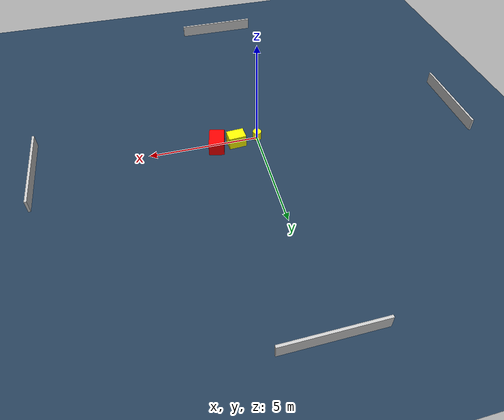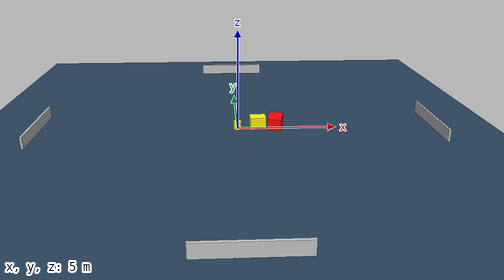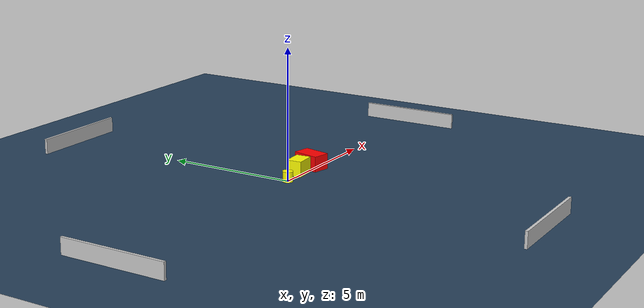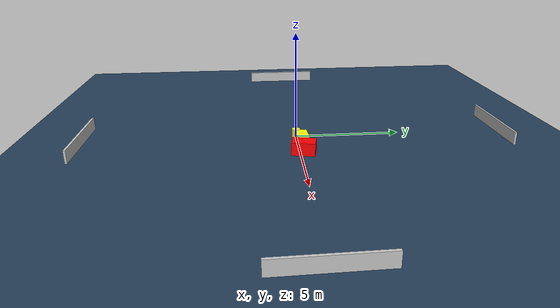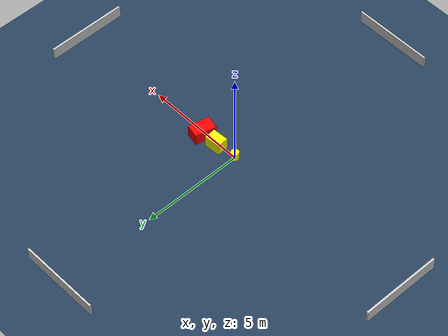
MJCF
<?xml version="1.0" ?>
<mujoco model="generated_environment">
  <option timestep="0.01" integrator="RK4" cone="elliptic"/>
  <default>
    <geom density="1"/>
  </default>
  <asset>
    <texture builtin="gradient" height="3072" name="skybox" rgb1="0.3 0.5 0.7" rgb2="0 0 0" type="skybox" width="512"/>
    <texture builtin="checker" height="300" name="groundplane" rgb1="0.2 0.3 0.4" rgb2="0.1 0.2 0.3" type="2d" width="300"/>
    <material name="groundplane" reflectance="0.2" texrepeat="5 5" texture="groundplane"/>
  </asset>
  <worldbody>
    <light dir="0 0 -1" directional="true" pos="0 0 1.5"/>
    <geom condim="3" friction="0.5 0.005 0.001" material="groundplane" name="floor" pos="0 0 0" size="0 0 0.05" type="plane"/>
    <body name="walls">
      <geom name="wall_1" condim="4" pos="-10.0 0.0 0.3" rgba="0.800000011920929 0.800000011920929 0.800000011920929 1.0" size="0.05 2.0 0.3" type="box"/>
      <geom name="wall_2" condim="4" pos="10.0 0.0 0.3" rgba="0.800000011920929 0.800000011920929 0.800000011920929 1.0" size="0.05 2.0 0.3" type="box"/>
      <geom name="wall_3" condim="4" pos="0.0 -10.0 0.3" rgba="0.800000011920929 0.800000011920929 0.800000011920929 1.0" size="2.0 0.05 0.3" type="box"/>
      <geom name="wall_4" condim="4" pos="0.0 10.0 0.3" rgba="0.800000011920929 0.800000011920929 0.800000011920929 1.0" size="2.0 0.05 0.3" type="box"/>
    </body>
    <body name="robot">
      <joint name="joint_x" type="slide" pos="0 0 0" axis="1 0 0"/>
      <joint name="joint_y" type="slide" pos="0 0 0" axis="0 1 0"/>
      <geom name="robot" type="cylinder" pos="0.0 0.0 0.2" size="0.2 0.2 0.0" mass="5.0" friction="1.0 0.005 0.0001" condim="4" rgba="1.0 1.0 0.0 1.0"/>
    </body>
    <body name="obstacle_1_movable">
      <geom name="obstacle_1_movable" condim="4" pos="1.0285763194830853 0.15496519680460832 0.3" euler="0 0 3.8414910570028438" friction="0.0 0.005 0.001" rgba="1.0 1.0 0.0 1.0" size="0.39659787858498474 0.2892203163187491 0.3" type="box" mass="0.1"/>
      <joint type="free"/>
    </body>
    <body name="obstacle_2_static">
      <geom name="obstacle_2_static" condim="4" pos="1.9365559696104049 0.1553208230673983 0.3" euler="0 0 167.49543115154287" friction="0.0 0.005 0.001" rgba="1.0 0.0 0.0 1.0" size="0.34218257964855436 0.5309478333199746 0.3" type="box"/>
    </body>
  </worldbody>
  <actuator>
    <motor name="actuator_x" joint="joint_x" gear="1" ctrlrange="-1 1"/>
    <motor name="actuator_y" joint="joint_y" gear="1" ctrlrange="-1 1"/>
  </actuator>
</mujoco>
